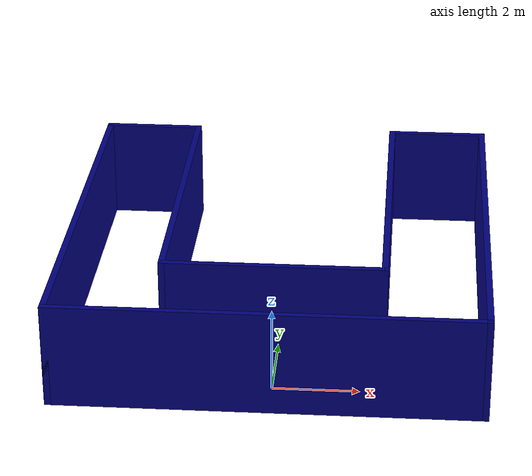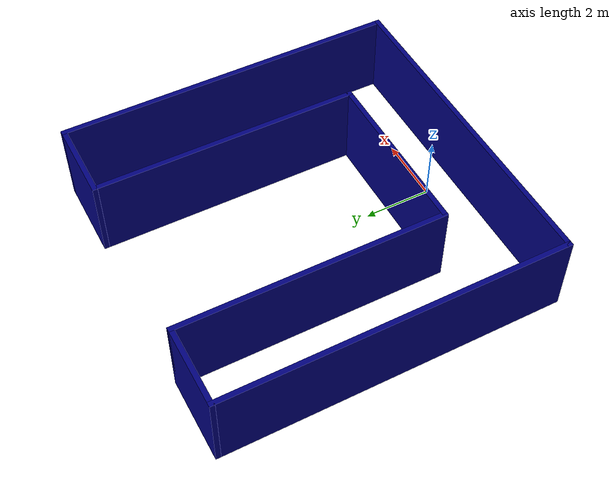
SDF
<?xml version='1.0'?>
<sdf version='1.6'>
  <model name='MyWorld2'>
    <pose frame=''>-0.075 4.075 0 0 -0 0</pose>
    <link name='Wall_0'>
      <collision name='Wall_0_Collision'>
        <geometry>
          <box>
            <size>10.3 0.15 2.5</size>
          </box>
        </geometry>
        <pose frame=''>0 0 1.25 0 -0 0</pose>
      </collision>
      <visual name='Wall_0_Visual'>
        <pose frame=''>0 0 1.25 0 -0 0</pose>
        <geometry>
          <box>
            <size>10.3 0.15 2.5</size>
          </box>
        </geometry>
        <material>
          <script>
            <uri>file://media/materials/scripts/gazebo.material</uri>
            <name>Gazebo/Grey</name>
          </script>
          <ambient>0 0 0.498039 1</ambient>
        </material>
        <meta>
          <layer>0</layer>
        </meta>
      </visual>
      <pose frame=''>-4.925 0 0 0 0 -1.5708</pose>
    </link>
    <link name='Wall_11'>
      <collision name='Wall_11_Collision'>
        <geometry>
          <box>
            <size>2.5 0.15 2.5</size>
          </box>
        </geometry>
        <pose frame=''>0 0 1.25 0 -0 0</pose>
      </collision>
      <visual name='Wall_11_Visual'>
        <pose frame=''>0 0 1.25 0 -0 0</pose>
        <geometry>
          <box>
            <size>2.5 0.15 2.5</size>
          </box>
        </geometry>
        <material>
          <script>
            <uri>file://media/materials/scripts/gazebo.material</uri>
            <name>Gazebo/Grey</name>
          </script>
          <ambient>0 0 0.498039 1</ambient>
        </material>
        <meta>
          <layer>0</layer>
        </meta>
      </visual>
      <pose frame=''>3.75 5.075 0 0 -0 3.14159</pose>
    </link>
    <link name='Wall_12'>
      <collision name='Wall_12_Collision'>
        <geometry>
          <box>
            <size>8 0.15 2.5</size>
          </box>
        </geometry>
        <pose frame=''>0 0 1.25 0 -0 0</pose>
      </collision>
      <visual name='Wall_12_Visual'>
        <pose frame=''>0 0 1.25 0 -0 0</pose>
        <geometry>
          <box>
            <size>8 0.15 2.5</size>
          </box>
        </geometry>
        <material>
          <script>
            <uri>file://media/materials/scripts/gazebo.material</uri>
            <name>Gazebo/Grey</name>
          </script>
          <ambient>0 0 0.498039 1</ambient>
        </material>
        <meta>
          <layer>0</layer>
        </meta>
      </visual>
      <pose frame=''>2.575 1.15 0 0 0 -1.5708</pose>
    </link>
    <link name='Wall_13'>
      <collision name='Wall_13_Collision'>
        <geometry>
          <box>
            <size>5.25 0.15 2.5</size>
          </box>
        </geometry>
        <pose frame=''>0 0 1.25 0 -0 0</pose>
      </collision>
      <visual name='Wall_13_Visual'>
        <pose frame=''>0 0 1.25 0 -0 0</pose>
        <geometry>
          <box>
            <size>5.25 0.15 2.5</size>
          </box>
        </geometry>
        <material>
          <script>
            <uri>file://media/materials/scripts/gazebo.material</uri>
            <name>Gazebo/Grey</name>
          </script>
          <ambient>0 0 0.498039 1</ambient>
        </material>
        <meta>
          <layer>0</layer>
        </meta>
      </visual>
      <pose frame=''>0.025 -2.775 0 0 -0 3.14159</pose>
    </link>
    <link name='Wall_15'>
      <collision name='Wall_15_Collision'>
        <geometry>
          <box>
            <size>8 0.15 2.5</size>
          </box>
        </geometry>
        <pose frame=''>0 0 1.25 0 -0 0</pose>
      </collision>
      <visual name='Wall_15_Visual'>
        <pose frame=''>0 0 1.25 0 -0 0</pose>
        <geometry>
          <box>
            <size>8 0.15 2.5</size>
          </box>
        </geometry>
        <material>
          <script>
            <uri>file://media/materials/scripts/gazebo.material</uri>
            <name>Gazebo/Grey</name>
          </script>
          <ambient>0 0 0.498039 1</ambient>
        </material>
        <meta>
          <layer>0</layer>
        </meta>
      </visual>
      <pose frame=''>-2.575 1.15 0 0 0 -1.5708</pose>
    </link>
    <link name='Wall_3'>
      <collision name='Wall_3_Collision'>
        <geometry>
          <box>
            <size>10 0.15 2.5</size>
          </box>
        </geometry>
        <pose frame=''>0 0 1.25 0 -0 0</pose>
      </collision>
      <visual name='Wall_3_Visual'>
        <pose frame=''>0 0 1.25 0 -0 0</pose>
        <geometry>
          <box>
            <size>10 0.15 2.5</size>
          </box>
        </geometry>
        <material>
          <script>
            <uri>file://media/materials/scripts/gazebo.material</uri>
            <name>Gazebo/Grey</name>
          </script>
          <ambient>0 0 0.498039 1</ambient>
        </material>
        <meta>
          <layer>0</layer>
        </meta>
      </visual>
      <pose frame=''>0 -5.075 0 0 -0 0</pose>
    </link>
    <link name='Wall_5'>
      <collision name='Wall_5_Collision'>
        <geometry>
          <box>
            <size>10.3 0.15 2.5</size>
          </box>
        </geometry>
        <pose frame=''>0 0 1.25 0 -0 0</pose>
      </collision>
      <visual name='Wall_5_Visual'>
        <pose frame=''>0 0 1.25 0 -0 0</pose>
        <geometry>
          <box>
            <size>10.3 0.15 2.5</size>
          </box>
        </geometry>
        <material>
          <script>
            <uri>file://media/materials/scripts/gazebo.material</uri>
            <name>Gazebo/Grey</name>
          </script>
          <ambient>0 0 0.498039 1</ambient>
        </material>
        <meta>
          <layer>0</layer>
        </meta>
      </visual>
      <pose frame=''>4.925 0 0 0 -0 1.5708</pose>
    </link>
    <link name='Wall_7'>
      <collision name='Wall_7_Collision'>
        <geometry>
          <box>
            <size>2.5 0.15 2.5</size>
          </box>
        </geometry>
        <pose frame=''>0 0 1.25 0 -0 0</pose>
      </collision>
      <visual name='Wall_7_Visual'>
        <pose frame=''>0 0 1.25 0 -0 0</pose>
        <geometry>
          <box>
            <size>2.5 0.15 2.5</size>
          </box>
        </geometry>
        <material>
          <script>
            <uri>file://media/materials/scripts/gazebo.material</uri>
            <name>Gazebo/Grey</name>
          </script>
          <ambient>0 0 0.498039 1</ambient>
        </material>
        <meta>
          <layer>0</layer>
        </meta>
      </visual>
      <pose frame=''>-3.75 5.075 0 0 -0 0</pose>
    </link>
    <static>1</static>
  </model>
</sdf>
